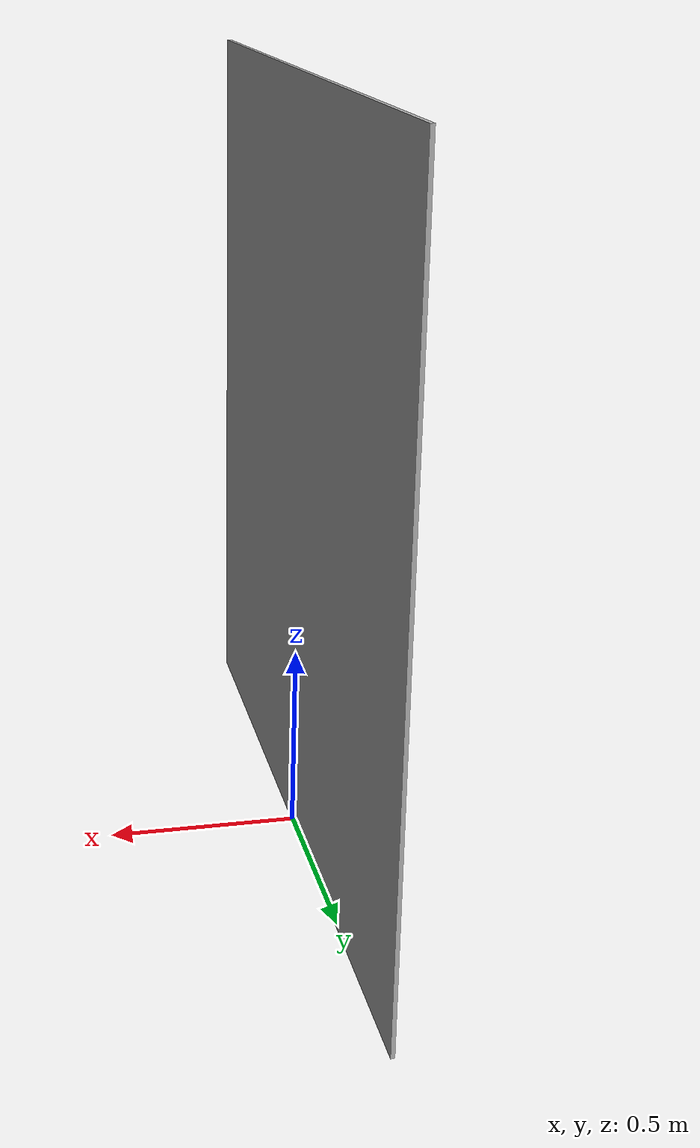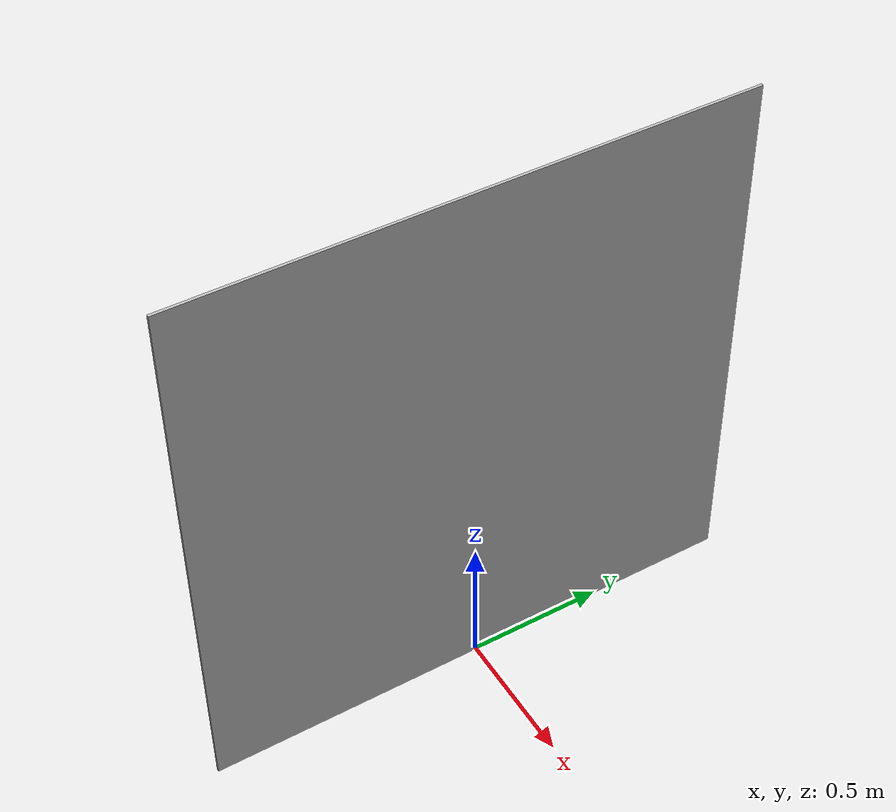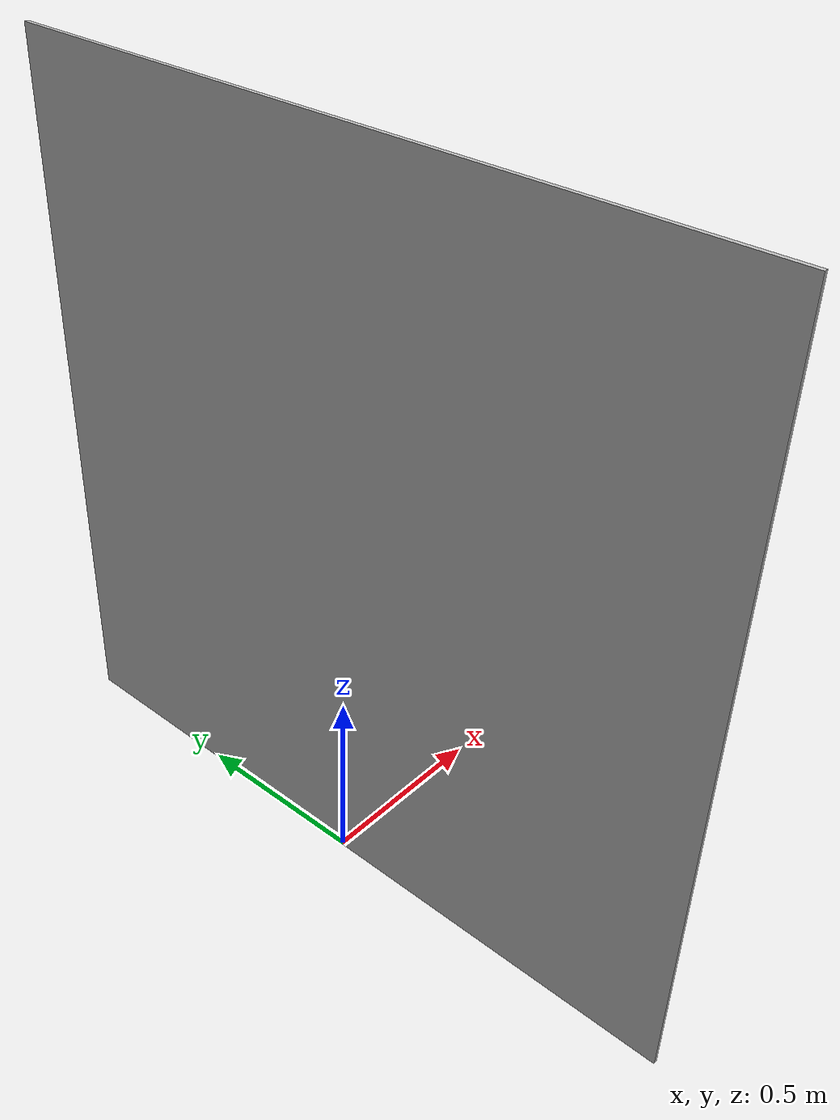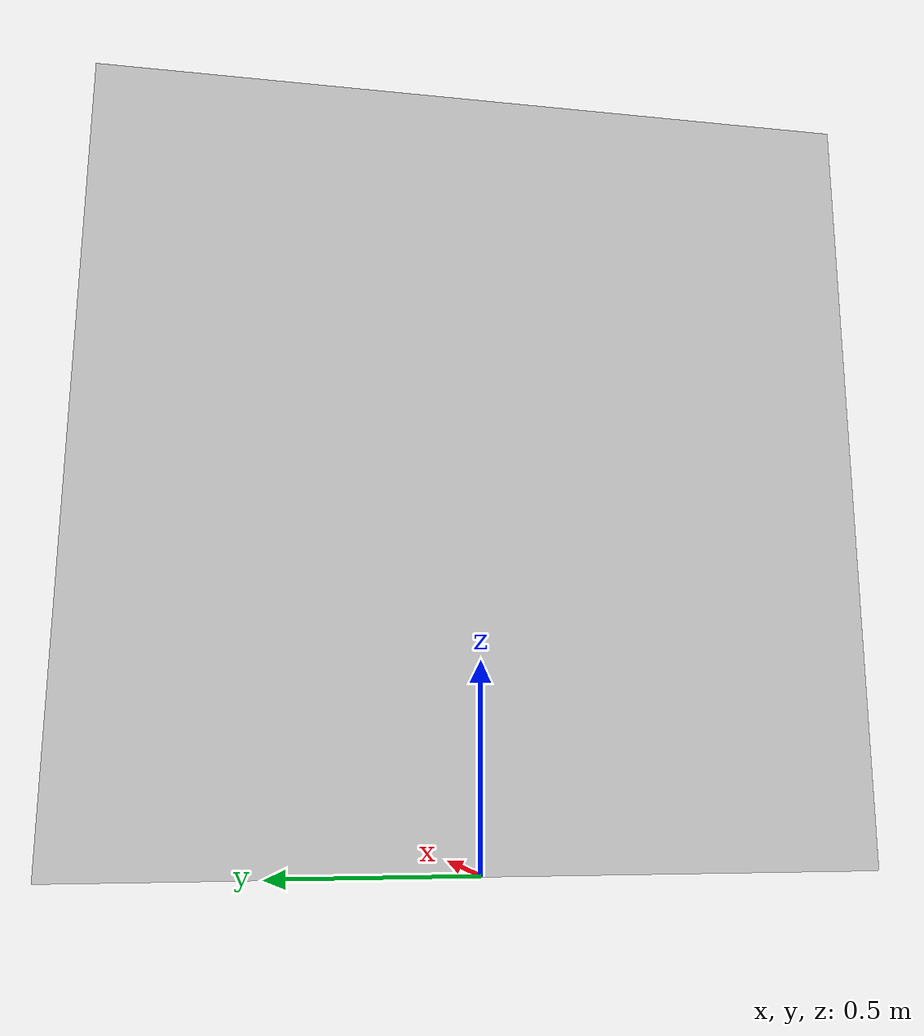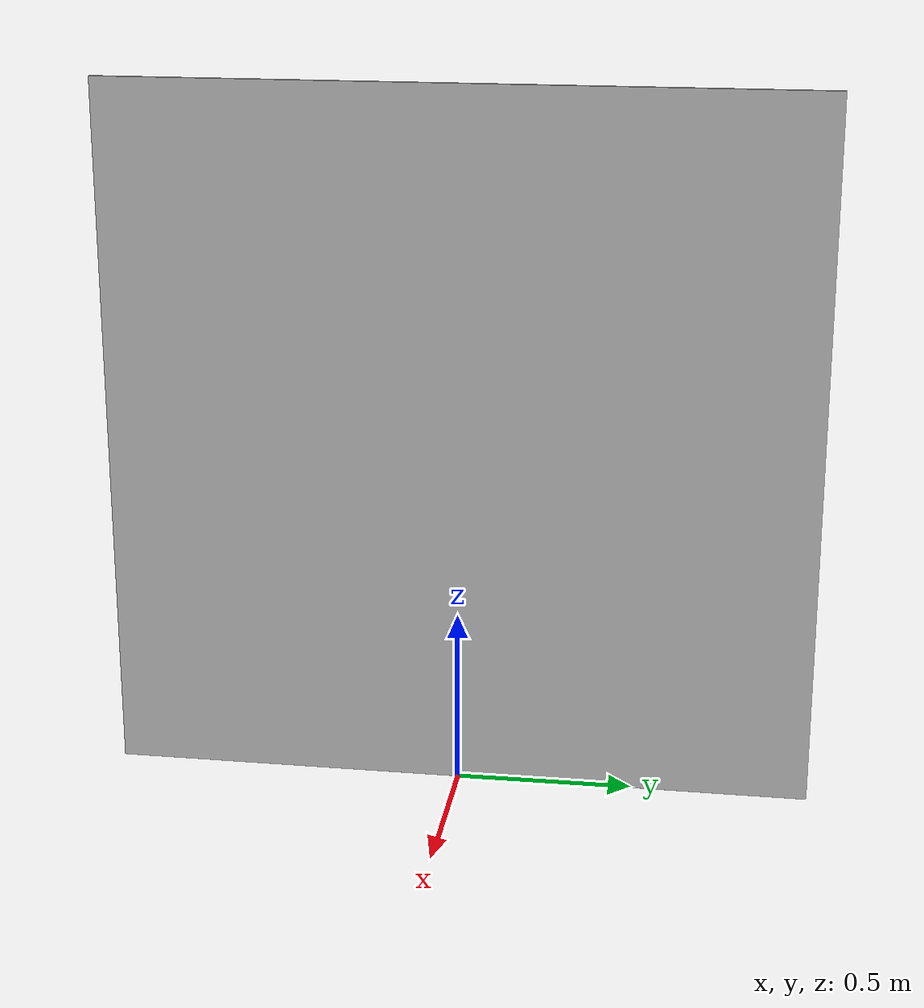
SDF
<?xml version="1.0" ?>
<sdf version="1.5">
  <model name="glass1x200x200">
    <static>1</static>
    <link name="link">
      <pose>0 0 1.0 0 0 0</pose>

      <visual name="visual">
        <geometry>
          <box>
            <size>0.01 2.0 2.0</size>
          </box>
        </geometry>
      </visual>

    </link>

    <plugin name="glass" filename="libgazebo_rad_obstacle.so">
      <depth>0.01</depth>
      <width>2.0</width>
      <height>2.2</height>
      <material>glass</material>
      <density>2.3</density> <!-- g/cm^3 -->
      <mac60kev>2.66E-01</mac60kev> <!-- cm^2/g -->
      <mac600kev>6.236E-02</mac600kev> <!-- cm^2/g -->
    </plugin>

  </model>
</sdf>
